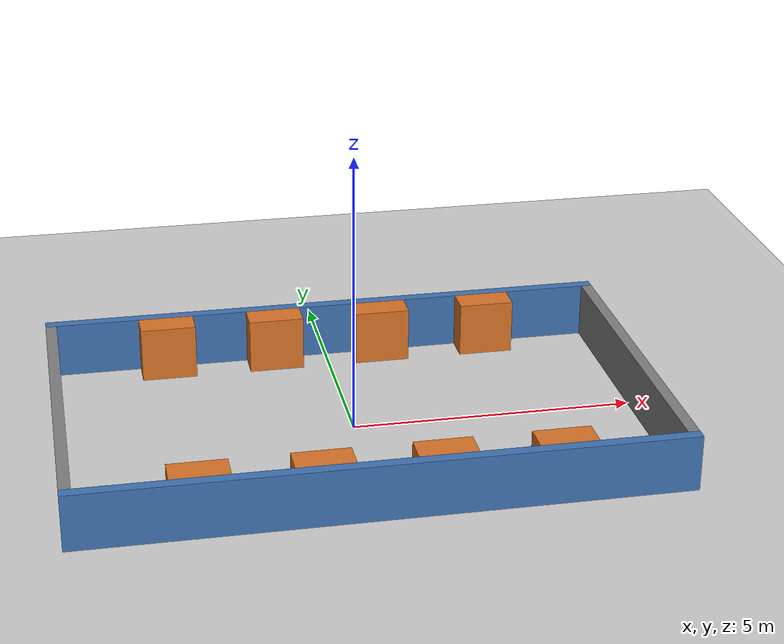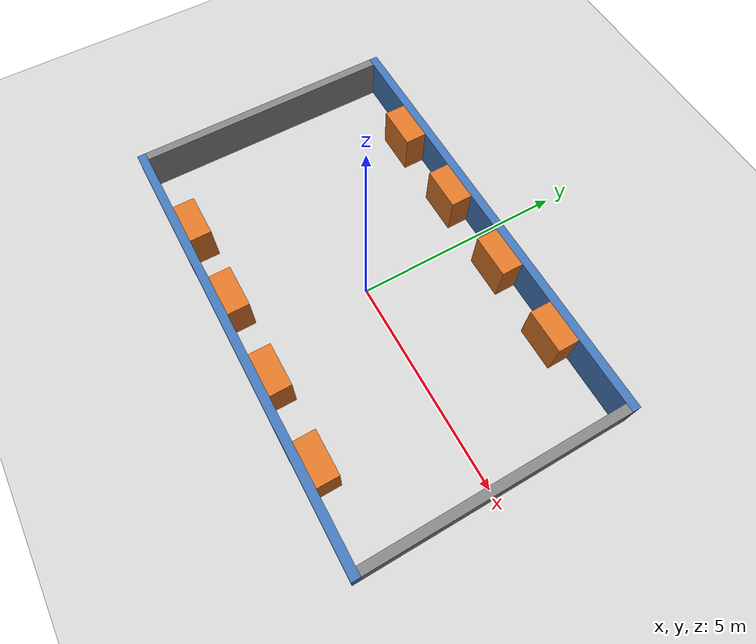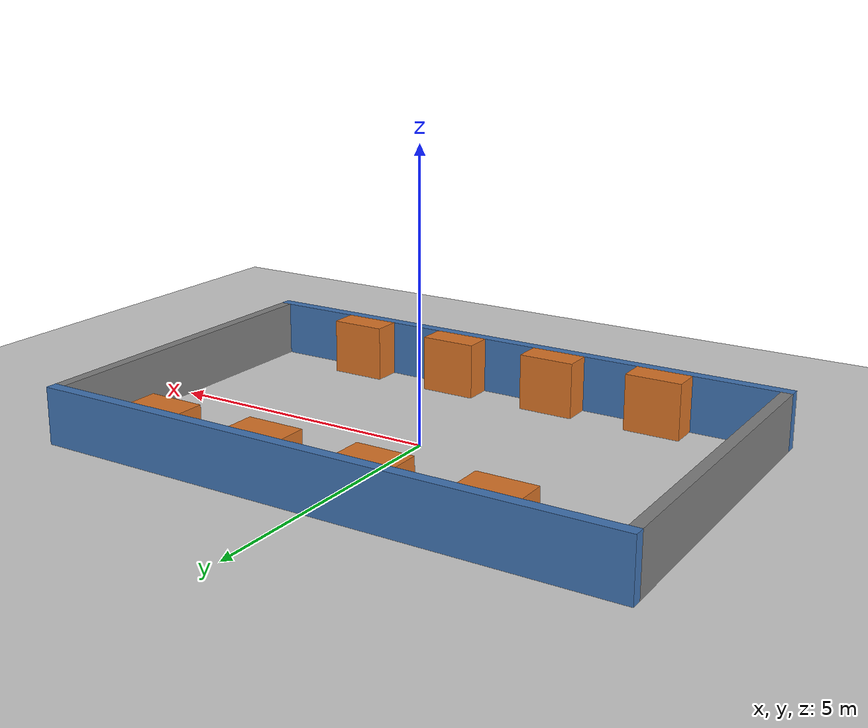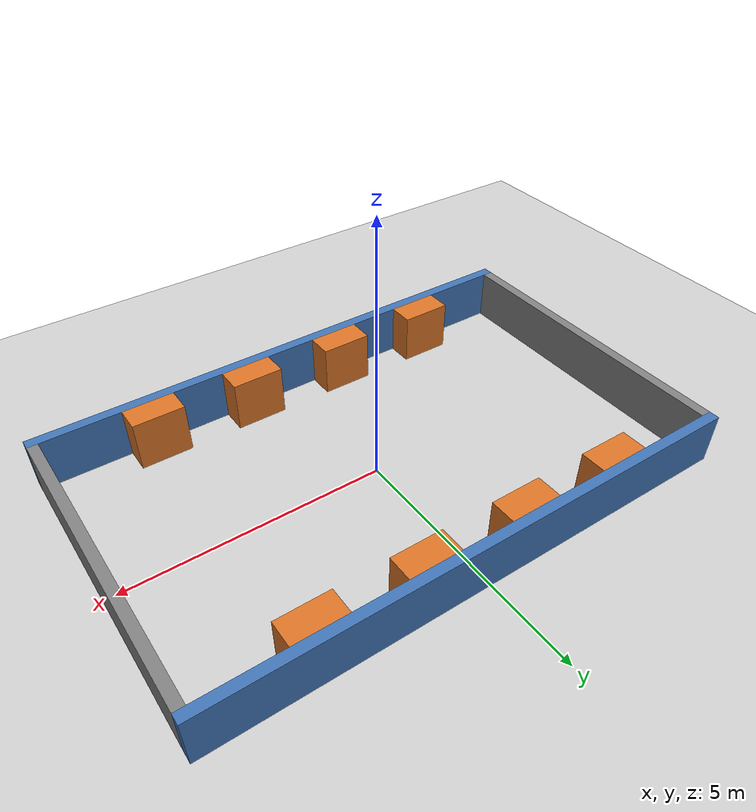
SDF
<?xml version="1.0"?>
<sdf version="1.9">
	<world name="lidar_test">
		<physics name="1ms" type="ignored">
			<max_step_size>0.001</max_step_size>
			<real_time_factor>1.0</real_time_factor>
		</physics>
		<plugin filename="ignition-gazebo-physics-system" name="gz::sim::systems::Physics" />
		<plugin filename="ignition-gazebo-user-commands-system" name="gz::sim::systems::UserCommands" />
		<plugin filename="ignition-gazebo-scene-broadcaster-system" name="gz::sim::systems::SceneBroadcaster" />
		<plugin filename="ignition-gazebo-contact-system" name="gz::sim::systems::Contact" />
		<plugin filename="ignition-gazebo-sensors-system" name="gz::sim::systems::Sensors">
			<render_engine>ogre2</render_engine>
		</plugin>
		<light type="directional" name="sun">
			<cast_shadows>false</cast_shadows>
			<pose>0 0 10 0 0 0</pose>
			<diffuse>0.8 0.8 0.8 1</diffuse>
			<specular>0.2 0.2 0.2 1</specular>
			<attenuation>
				<range>1000</range>
				<constant>0.9</constant>
				<linear>0.01</linear>
				<quadratic>0.001</quadratic>
			</attenuation>
			<direction>-0.5 0.1 -0.9</direction>
		</light>
		<model name="ground_plane">
			<static>true</static>
			<link name="link">
				<collision name="collision">
					<geometry>
						<plane>
							<normal>0 0 1</normal>
							<size>14 10</size>
						</plane>
					</geometry>
				</collision>
				<visual name="visual">
					<geometry>
						<plane>
							<normal>0 0 1</normal>
							<size>14 10</size>
						</plane>
					</geometry>
					<material>
						<ambient>0.8 0.8 0.8 1</ambient>
						<diffuse>0.8 0.8 0.8 1</diffuse>
						<specular>0.8 0.8 0.8 1</specular>
					</material>
				</visual>
			</link>
		</model>
		<model name="lidar_test_enclosure">
			<static>true</static>
			<link name="walls">
				<collision name="north_wall">
					<pose>0 3.1 0.5 0 0 0</pose>
					<geometry>
						<box>
							<size>10.4 0.2 1</size>
						</box>
					</geometry>
				</collision>
				<visual name="north_wall_visual">
					<pose>0 3.1 0.5 0 0 0</pose>
					<geometry>
						<box>
							<size>10.4 0.2 1</size>
						</box>
					</geometry>
					<material>
						<ambient>0.25 0.45 0.7 1</ambient>
						<diffuse>0.25 0.45 0.7 1</diffuse>
					</material>
					<cast_shadows>false</cast_shadows>
				</visual>
				<collision name="south_wall">
					<pose>0 -3.1 0.5 0 0 0</pose>
					<geometry>
						<box>
							<size>10.4 0.2 1</size>
						</box>
					</geometry>
				</collision>
				<visual name="south_wall_visual">
					<pose>0 -3.1 0.5 0 0 0</pose>
					<geometry>
						<box>
							<size>10.4 0.2 1</size>
						</box>
					</geometry>
					<material>
						<ambient>0.25 0.45 0.7 1</ambient>
						<diffuse>0.25 0.45 0.7 1</diffuse>
					</material>
					<cast_shadows>false</cast_shadows>
				</visual>
				<collision name="east_wall">
					<pose>5.1 0 0.5 0 0 0</pose>
					<geometry>
						<box>
							<size>0.2 6 1</size>
						</box>
					</geometry>
				</collision>
				<visual name="east_wall_visual">
					<pose>5.1 0 0.5 0 0 0</pose>
					<geometry>
						<box>
							<size>0.2 6 1</size>
						</box>
					</geometry>
					<material>
						<ambient>0.5 0.5 0.5 1</ambient>
						<diffuse>0.5 0.5 0.5 1</diffuse>
					</material>
					<cast_shadows>false</cast_shadows>
				</visual>
				<collision name="west_wall">
					<pose>-5.1 0 0.5 0 0 0</pose>
					<geometry>
						<box>
							<size>0.2 6 1</size>
						</box>
					</geometry>
				</collision>
				<visual name="west_wall_visual">
					<pose>-5.1 0 0.5 0 0 0</pose>
					<geometry>
						<box>
							<size>0.2 6 1</size>
						</box>
					</geometry>
					<material>
						<ambient>0.5 0.5 0.5 1</ambient>
						<diffuse>0.5 0.5 0.5 1</diffuse>
					</material>
					<cast_shadows>false</cast_shadows>
				</visual>
				<collision name="north_tooth_01">
					<pose>-3 2.75 0.5 0 0 0</pose>
					<geometry>
						<box>
							<size>1 0.5 1</size>
						</box>
					</geometry>
				</collision>
				<visual name="north_tooth_01_visual">
					<pose>-3 2.75 0.5 0 0 0</pose>
					<geometry>
						<box>
							<size>1 0.5 1</size>
						</box>
					</geometry>
					<material>
						<ambient>0.85 0.45 0.15 1</ambient>
						<diffuse>0.85 0.45 0.15 1</diffuse>
					</material>
					<cast_shadows>false</cast_shadows>
				</visual>
				<collision name="north_tooth_02">
					<pose>-1 2.75 0.5 0 0 0</pose>
					<geometry>
						<box>
							<size>1 0.5 1</size>
						</box>
					</geometry>
				</collision>
				<visual name="north_tooth_02_visual">
					<pose>-1 2.75 0.5 0 0 0</pose>
					<geometry>
						<box>
							<size>1 0.5 1</size>
						</box>
					</geometry>
					<material>
						<ambient>0.85 0.45 0.15 1</ambient>
						<diffuse>0.85 0.45 0.15 1</diffuse>
					</material>
					<cast_shadows>false</cast_shadows>
				</visual>
				<collision name="north_tooth_03">
					<pose>1 2.75 0.5 0 0 0</pose>
					<geometry>
						<box>
							<size>1 0.5 1</size>
						</box>
					</geometry>
				</collision>
				<visual name="north_tooth_03_visual">
					<pose>1 2.75 0.5 0 0 0</pose>
					<geometry>
						<box>
							<size>1 0.5 1</size>
						</box>
					</geometry>
					<material>
						<ambient>0.85 0.45 0.15 1</ambient>
						<diffuse>0.85 0.45 0.15 1</diffuse>
					</material>
					<cast_shadows>false</cast_shadows>
				</visual>
				<collision name="north_tooth_04">
					<pose>3 2.75 0.5 0 0 0</pose>
					<geometry>
						<box>
							<size>1 0.5 1</size>
						</box>
					</geometry>
				</collision>
				<visual name="north_tooth_04_visual">
					<pose>3 2.75 0.5 0 0 0</pose>
					<geometry>
						<box>
							<size>1 0.5 1</size>
						</box>
					</geometry>
					<material>
						<ambient>0.85 0.45 0.15 1</ambient>
						<diffuse>0.85 0.45 0.15 1</diffuse>
					</material>
					<cast_shadows>false</cast_shadows>
				</visual>
				<collision name="south_tooth_01">
					<pose>-3 -2.75 0.5 0 0 0</pose>
					<geometry>
						<box>
							<size>1 0.5 1</size>
						</box>
					</geometry>
				</collision>
				<visual name="south_tooth_01_visual">
					<pose>-3 -2.75 0.5 0 0 0</pose>
					<geometry>
						<box>
							<size>1 0.5 1</size>
						</box>
					</geometry>
					<material>
						<ambient>0.85 0.45 0.15 1</ambient>
						<diffuse>0.85 0.45 0.15 1</diffuse>
					</material>
					<cast_shadows>false</cast_shadows>
				</visual>
				<collision name="south_tooth_02">
					<pose>-1 -2.75 0.5 0 0 0</pose>
					<geometry>
						<box>
							<size>1 0.5 1</size>
						</box>
					</geometry>
				</collision>
				<visual name="south_tooth_02_visual">
					<pose>-1 -2.75 0.5 0 0 0</pose>
					<geometry>
						<box>
							<size>1 0.5 1</size>
						</box>
					</geometry>
					<material>
						<ambient>0.85 0.45 0.15 1</ambient>
						<diffuse>0.85 0.45 0.15 1</diffuse>
					</material>
					<cast_shadows>false</cast_shadows>
				</visual>
				<collision name="south_tooth_03">
					<pose>1 -2.75 0.5 0 0 0</pose>
					<geometry>
						<box>
							<size>1 0.5 1</size>
						</box>
					</geometry>
				</collision>
				<visual name="south_tooth_03_visual">
					<pose>1 -2.75 0.5 0 0 0</pose>
					<geometry>
						<box>
							<size>1 0.5 1</size>
						</box>
					</geometry>
					<material>
						<ambient>0.85 0.45 0.15 1</ambient>
						<diffuse>0.85 0.45 0.15 1</diffuse>
					</material>
					<cast_shadows>false</cast_shadows>
				</visual>
				<collision name="south_tooth_04">
					<pose>3 -2.75 0.5 0 0 0</pose>
					<geometry>
						<box>
							<size>1 0.5 1</size>
						</box>
					</geometry>
				</collision>
				<visual name="south_tooth_04_visual">
					<pose>3 -2.75 0.5 0 0 0</pose>
					<geometry>
						<box>
							<size>1 0.5 1</size>
						</box>
					</geometry>
					<material>
						<ambient>0.85 0.45 0.15 1</ambient>
						<diffuse>0.85 0.45 0.15 1</diffuse>
					</material>
					<cast_shadows>false</cast_shadows>
				</visual>
			</link>
		</model>
	</world>
</sdf>
